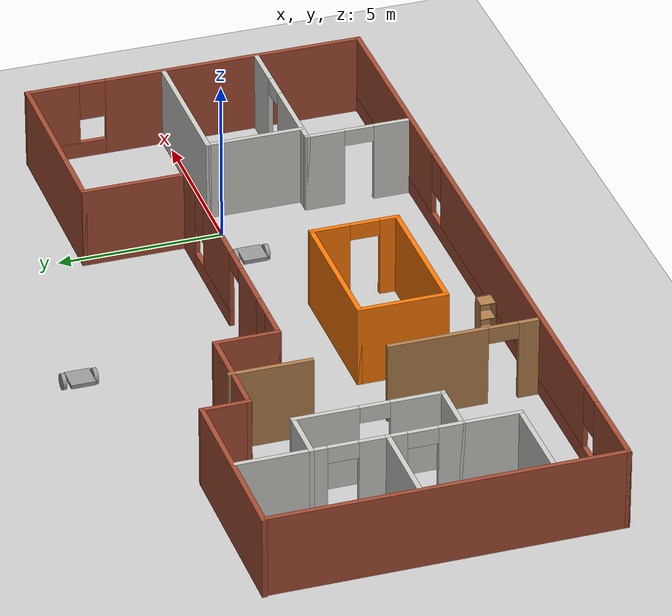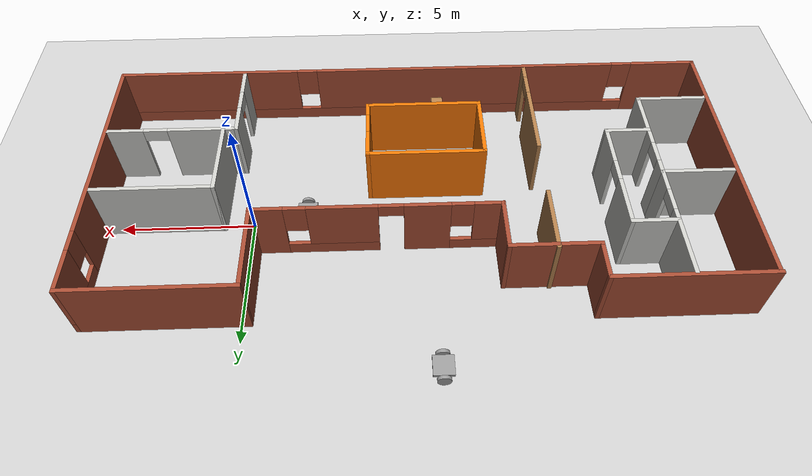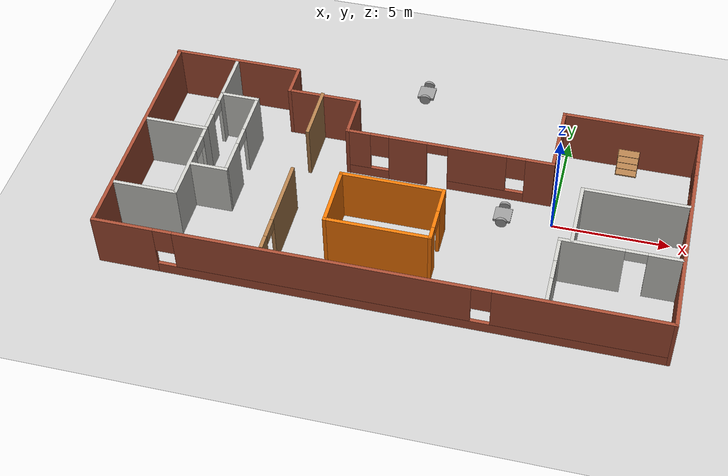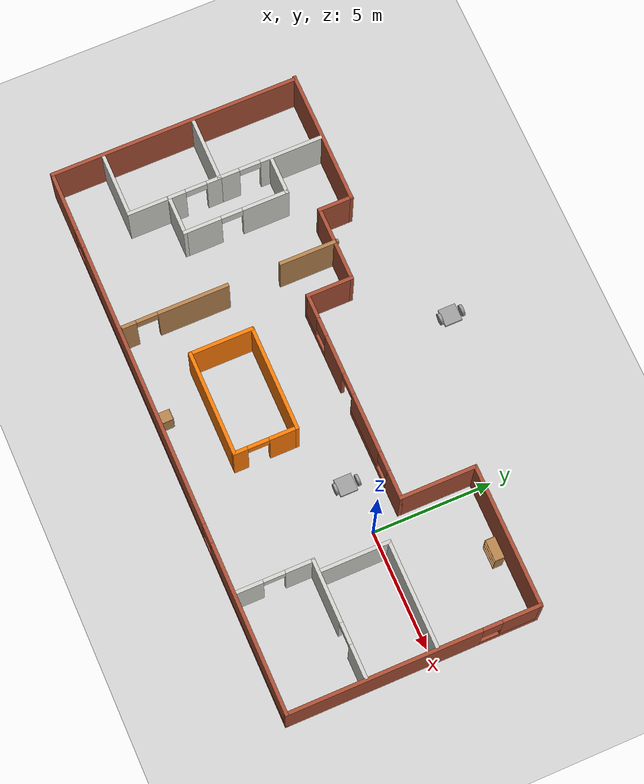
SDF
<sdf version="1.6">
 <world name="default">
  <plugin name="hello" filename="libhello.so"/>
  <light name="sun" type="directional">
   <pose>0 0 10 0 -0 0</pose>
   <diffuse>0.8 0.8 0.8 1</diffuse>
   <specular>0.2 0.2 0.2 1</specular>
   <attenuation>
    <range>1000</range>
    <constant>0.9</constant>
    <linear>0.01</linear>
    <quadratic>0.001</quadratic>
   </attenuation>
   <direction>-0.5 0.1 -0.9</direction>
  </light>
  <model name="ground_plane">
   <static>1</static>
   <link name="link">
    <collision name="collision">
     <geometry><plane><normal>0 0 1</normal><size>100 100</size></plane></geometry>
     <surface>
      <contact><collide_bitmask>65535</collide_bitmask></contact>
      <friction><ode><mu>100</mu><mu2>50</mu2></ode></friction>
     </surface>
    </collision>
    <visual name="visual">
     <cast_shadows>0</cast_shadows>
     <geometry><plane><normal>0 0 1</normal><size>100 100</size></plane></geometry>
     <material>
      <script><uri>file://media/materials/scripts/gazebo.material</uri><name>Gazebo/Grey</name></script>
     </material>
    </visual>
   </link>
  </model>
  <gravity>0 0 -9.8</gravity>
  <magnetic_field>6e-06 2.3e-05 -4.2e-05</magnetic_field>
  <atmosphere type="adiabatic"/>
  <physics name="default_physics" default="0" type="ode">
   <max_step_size>0.001</max_step_size>
   <real_time_factor>1</real_time_factor>
   <real_time_update_rate>1000</real_time_update_rate>
  </physics>
  <scene><ambient>0.4 0.4 0.4 1</ambient><background>0.7 0.7 0.7 1</background><shadows>1</shadows></scene>
  <spherical_coordinates>
   <surface_model>EARTH_WGS84</surface_model>
   <latitude_deg>0</latitude_deg>
   <longitude_deg>0</longitude_deg>
   <elevation>0</elevation>
   <heading_deg>0</heading_deg>
  </spherical_coordinates>
  <model name="Building">
   <pose>-6.15049 -0.832939 0 0 -0 0</pose>
   <link name="Wall_1">
    <collision name="Wall_1_Collision">
     <geometry><box><size>10.5 0.15 2.5</size></box></geometry>
     <pose>0 0 1.25 0 -0 0</pose>
    </collision>
    <visual name="Wall_1_Visual">
     <pose>0 0 1.25 0 -0 0</pose>
     <geometry><box><size>10.5 0.15 2.5</size></box></geometry>
     <material>
      <script><uri>file://media/materials/scripts/gazebo.material</uri><name>Gazebo/Bricks</name></script>
      <ambient>1 1 1 1</ambient>
     </material>
     <meta><layer>0</layer></meta>
    </visual>
    <pose>-11.65 -0.05 0 0 0 -1.5708</pose>
   </link>
   <link name="Wall_10">
    <collision name="Wall_10_Collision">
     <geometry><box><size>3.25 0.15 2.5</size></box></geometry>
     <pose>0 0 1.25 0 -0 0</pose>
    </collision>
    <visual name="Wall_10_Visual">
     <pose>0 0 1.25 0 -0 0</pose>
     <geometry><box><size>3.25 0.15 2.5</size></box></geometry>
     <material>
      <script><uri>file://media/materials/scripts/gazebo.material</uri><name>Gazebo/Bricks</name></script>
      <ambient>1 1 1 1</ambient>
     </material>
     <meta><layer>0</layer></meta>
    </visual>
    <pose>-4.55 3.875 0 0 -0 3.14159</pose>
   </link>
   <link name="Wall_11">
    <collision name="Wall_11_Collision">
     <geometry><box><size>1.5 0.15 2.5</size></box></geometry>
     <pose>0 0 1.25 0 -0 0</pose>
    </collision>
    <visual name="Wall_11_Visual">
     <pose>0 0 1.25 0 -0 0</pose>
     <geometry><box><size>1.5 0.15 2.5</size></box></geometry>
     <material>
      <script><uri>file://media/materials/scripts/gazebo.material</uri><name>Gazebo/Bricks</name></script>
      <ambient>1 1 1 1</ambient>
     </material>
     <meta><layer>0</layer></meta>
    </visual>
    <pose>-6.1 4.55 0 0 -0 1.5708</pose>
   </link>
   <link name="Wall_14">
    <collision name="Wall_14_Collision">
     <geometry><box><size>5.75 0.15 2.5</size></box></geometry>
     <pose>0 0 1.25 0 -0 0</pose>
    </collision>
    <visual name="Wall_14_Visual">
     <pose>0 0 1.25 0 -0 0</pose>
     <geometry><box><size>5.75 0.15 2.5</size></box></geometry>
     <material>
      <script><uri>file://media/materials/scripts/gazebo.material</uri><name>Gazebo/Bricks</name></script>
      <ambient>1 1 1 1</ambient>
     </material>
     <meta><layer>0</layer></meta>
    </visual>
    <pose>-8.9 5.225 0 0 -0 3.14159</pose>
   </link>
   <link name="Wall_16">
    <pose>6.75486 -3.54398 0 0 -0 1.5708</pose>
    <visual name="Wall_16_Visual_0">
     <pose>-1.06347 0 1.25 0 -0 0</pose>
     <geometry><box><size>1.12307 0.15 2.5</size></box></geometry>
     <material>
      <script><uri>file://media/materials/scripts/gazebo.material</uri><name>Gazebo/CeilingTiled</name></script>
      <ambient>1 0.764706 0.305882 1</ambient>
     </material>
     <meta><layer>0</layer></meta>
    </visual>
    <collision name="Wall_16_Collision_0">
     <geometry><box><size>1.12307 0.15 2.5</size></box></geometry>
     <pose>-1.06347 0 1.25 0 -0 0</pose>
    </collision>
    <visual name="Wall_16_Visual_1">
     <pose>1.01154 0 1.25 0 -0 0</pose>
     <geometry><box><size>1.22693 0.15 2.5</size></box></geometry>
     <material>
      <script><uri>file://media/materials/scripts/gazebo.material</uri><name>Gazebo/CeilingTiled</name></script>
      <ambient>1 0.764706 0.305882 1</ambient>
     </material>
     <meta><layer>0</layer></meta>
    </visual>
    <collision name="Wall_16_Collision_1">
     <geometry><box><size>1.22693 0.15 2.5</size></box></geometry>
     <pose>1.01154 0 1.25 0 -0 0</pose>
    </collision>
    <visual name="Wall_16_Visual_2">
     <pose>-0.05193 0 2.25 0 -0 0</pose>
     <geometry><box><size>0.9 0.15 0.5</size></box></geometry>
     <material>
      <script><uri>file://media/materials/scripts/gazebo.material</uri><name>Gazebo/CeilingTiled</name></script>
      <ambient>1 0.764706 0.305882 1</ambient>
     </material>
     <meta><layer>0</layer></meta>
    </visual>
    <collision name="Wall_16_Collision_2">
     <geometry><box><size>0.9 0.15 0.5</size></box></geometry>
     <pose>-0.05193 0 2.25 0 -0 0</pose>
    </collision>
   </link>
   <link name="Wall_17">
    <pose>9.17986 -1.99398 0 0 -0 0</pose>
    <visual name="Wall_17_Visual_0">
     <pose>-1.16268 0 1.25 0 -0 0</pose>
     <geometry><box><size>2.67464 0.15 2.5</size></box></geometry>
     <material>
      <script><uri>file://media/materials/scripts/gazebo.material</uri><name>Gazebo/CeilingTiled</name></script>
      <ambient>1 0.764706 0.305882 1</ambient>
     </material>
     <meta><layer>0</layer></meta>
    </visual>
    <collision name="Wall_17_Collision_0">
     <geometry><box><size>2.67464 0.15 2.5</size></box></geometry>
     <pose>-1.16268 0 1.25 0 -0 0</pose>
    </collision>
    <visual name="Wall_17_Visual_1">
     <pose>1.78732 0 1.25 0 -0 0</pose>
     <geometry><box><size>1.42536 0.15 2.5</size></box></geometry>
     <material>
      <script><uri>file://media/materials/scripts/gazebo.material</uri><name>Gazebo/CeilingTiled</name></script>
      <ambient>1 0.764706 0.305882 1</ambient>
     </material>
     <meta><layer>0</layer></meta>
    </visual>
    <collision name="Wall_17_Collision_1">
     <geometry><box><size>1.42536 0.15 2.5</size></box></geometry>
     <pose>1.78732 0 1.25 0 -0 0</pose>
    </collision>
    <visual name="Wall_17_Visual_2">
     <pose>0.624643 0 2.25 0 -0 0</pose>
     <geometry><box><size>0.9 0.15 0.5</size></box></geometry>
     <material>
      <script><uri>file://media/materials/scripts/gazebo.material</uri><name>Gazebo/CeilingTiled</name></script>
      <ambient>1 0.764706 0.305882 1</ambient>
     </material>
     <meta><layer>0</layer></meta>
    </visual>
    <collision name="Wall_17_Collision_2">
     <geometry><box><size>0.9 0.15 0.5</size></box></geometry>
     <pose>0.624643 0 2.25 0 -0 0</pose>
    </collision>
   </link>
   <link name="Wall_19">
    <collision name="Wall_19_Collision">
     <geometry><box><size>3 0.15 2.5</size></box></geometry>
     <pose>0 0 1.25 0 -0 0</pose>
    </collision>
    <visual name="Wall_19_Visual">
     <pose>0 0 1.25 0 -0 0</pose>
     <geometry><box><size>3 0.15 2.5</size></box></geometry>
     <material>
      <script><uri>file://media/materials/scripts/gazebo.material</uri><name>Gazebo/CeilingTiled</name></script>
      <ambient>1 0.764706 0.305882 1</ambient>
     </material>
     <meta><layer>0</layer></meta>
    </visual>
    <pose>7.23638 -0.51233 0 0 -0 1.5708</pose>
   </link>
   <link name="Wall_2">
    <pose>0.025 -5.225 0 0 -0 0</pose>
    <visual name="Wall_2_Visual_0">
     <pose>-10.4412 0 1.25 0 -0 0</pose>
     <geometry><box><size>2.61764 0.15 2.5</size></box></geometry>
     <material>
      <script><uri>file://media/materials/scripts/gazebo.material</uri><name>Gazebo/Bricks</name></script>
      <ambient>1 1 1 1</ambient>
     </material>
     <meta><layer>0</layer></meta>
    </visual>
    <collision name="Wall_2_Collision_0">
     <geometry><box><size>2.61764 0.15 2.5</size></box></geometry>
     <pose>-10.4412 0 1.25 0 -0 0</pose>
    </collision>
    <visual name="Wall_2_Visual_1">
     <pose>1.30882 0 0.25 0 -0 0</pose>
     <geometry><box><size>20.8824 0.15 0.5</size></box></geometry>
     <material>
      <script><uri>file://media/materials/scripts/gazebo.material</uri><name>Gazebo/Bricks</name></script>
      <ambient>1 1 1 1</ambient>
     </material>
     <meta><layer>0</layer></meta>
    </visual>
    <collision name="Wall_2_Collision_1">
     <geometry><box><size>20.8824 0.15 0.5</size></box></geometry>
     <pose>1.30882 0 0.25 0 -0 0</pose>
    </collision>
    <visual name="Wall_2_Visual_2">
     <pose>-2.25856 0 1.5 0 -0 0</pose>
     <geometry><box><size>12.1476 0.15 2</size></box></geometry>
     <material>
      <script><uri>file://media/materials/scripts/gazebo.material</uri><name>Gazebo/Bricks</name></script>
      <ambient>1 1 1 1</ambient>
     </material>
     <meta><layer>0</layer></meta>
    </visual>
    <collision name="Wall_2_Collision_2">
     <geometry><box><size>12.1476 0.15 2</size></box></geometry>
     <pose>-2.25856 0 1.5 0 -0 0</pose>
    </collision>
    <visual name="Wall_2_Visual_3">
     <pose>8.18262 0 1.5 0 -0 0</pose>
     <geometry><box><size>7.13476 0.15 2</size></box></geometry>
     <material>
      <script><uri>file://media/materials/scripts/gazebo.material</uri><name>Gazebo/Bricks</name></script>
      <ambient>1 1 1 1</ambient>
     </material>
     <meta><layer>0</layer></meta>
    </visual>
    <collision name="Wall_2_Collision_3">
     <geometry><box><size>7.13476 0.15 2</size></box></geometry>
     <pose>8.18262 0 1.5 0 -0 0</pose>
    </collision>
    <visual name="Wall_2_Visual_4">
     <pose>-8.73236 0 1.9 0 -0 0</pose>
     <geometry><box><size>0.8 0.15 1.2</size></box></geometry>
     <material>
      <script><uri>file://media/materials/scripts/gazebo.material</uri><name>Gazebo/Bricks</name></script>
      <ambient>1 1 1 1</ambient>
     </material>
     <meta><layer>0</layer></meta>
    </visual>
    <collision name="Wall_2_Collision_4">
     <geometry><box><size>0.8 0.15 1.2</size></box></geometry>
     <pose>-8.73236 0 1.9 0 -0 0</pose>
    </collision>
    <visual name="Wall_2_Visual_5">
     <pose>4.21524 0 1.9 0 -0 0</pose>
     <geometry><box><size>0.8 0.15 1.2</size></box></geometry>
     <material>
      <script><uri>file://media/materials/scripts/gazebo.material</uri><name>Gazebo/Bricks</name></script>
      <ambient>1 1 1 1</ambient>
     </material>
     <meta><layer>0</layer></meta>
    </visual>
    <collision name="Wall_2_Collision_5">
     <geometry><box><size>0.8 0.15 1.2</size></box></geometry>
     <pose>4.21524 0 1.9 0 -0 0</pose>
    </collision>
   </link>
   <link name="Wall_20">
    <collision name="Wall_20_Collision">
     <geometry><box><size>4.5 0.15 2.5</size></box></geometry>
     <pose>0 0 1.25 0 -0 0</pose>
    </collision>
    <visual name="Wall_20_Visual">
     <pose>0 0 1.25 0 -0 0</pose>
     <geometry><box><size>4.5 0.15 2.5</size></box></geometry>
     <material>
      <script><uri>file://media/materials/scripts/gazebo.material</uri><name>Gazebo/CeilingTiled</name></script>
      <ambient>1 0.764706 0.305882 1</ambient>
     </material>
     <meta><layer>0</layer></meta>
    </visual>
    <pose>9.41138 0.91267 0 0 -0 0</pose>
   </link>
   <link name="Wall_23">
    <pose>-8.92137 2.95 0 0 0 -1.5708</pose>
    <visual name="Wall_23_Visual_0">
     <pose>-0.912679 0 1.25 0 -0 0</pose>
     <geometry><box><size>2.67464 0.15 2.5</size></box></geometry>
     <material>
      <script><uri>file://media/materials/scripts/gazebo.material</uri><name>Gazebo/CeilingTiled</name></script>
      <ambient>0.435294 0.796078 0.67451 1</ambient>
     </material>
     <meta><layer>0</layer></meta>
    </visual>
    <collision name="Wall_23_Collision_0">
     <geometry><box><size>2.67464 0.15 2.5</size></box></geometry>
     <pose>-0.912679 0 1.25 0 -0 0</pose>
    </collision>
    <visual name="Wall_23_Visual_1">
     <pose>1.78732 0 1.25 0 -0 0</pose>
     <geometry><box><size>0.925357 0.15 2.5</size></box></geometry>
     <material>
      <script><uri>file://media/materials/scripts/gazebo.material</uri><name>Gazebo/CeilingTiled</name></script>
      <ambient>0.435294 0.796078 0.67451 1</ambient>
     </material>
     <meta><layer>0</layer></meta>
    </visual>
    <collision name="Wall_23_Collision_1">
     <geometry><box><size>0.925357 0.15 2.5</size></box></geometry>
     <pose>1.78732 0 1.25 0 -0 0</pose>
    </collision>
    <visual name="Wall_23_Visual_2">
     <pose>0.874643 0 2.25 0 -0 0</pose>
     <geometry><box><size>0.9 0.15 0.5</size></box></geometry>
     <material>
      <script><uri>file://media/materials/scripts/gazebo.material</uri><name>Gazebo/CeilingTiled</name></script>
      <ambient>0.435294 0.796078 0.67451 1</ambient>
     </material>
     <meta><layer>0</layer></meta>
    </visual>
    <collision name="Wall_23_Collision_2">
     <geometry><box><size>0.9 0.15 0.5</size></box></geometry>
     <pose>0.874643 0 2.25 0 -0 0</pose>
    </collision>
   </link>
   <link name="Wall_24">
    <collision name="Wall_24_Collision">
     <geometry><box><size>2.75 0.15 2.5</size></box></geometry>
     <pose>0 0 1.25 0 -0 0</pose>
    </collision>
    <visual name="Wall_24_Visual">
     <pose>0 0 1.25 0 -0 0</pose>
     <geometry><box><size>2.75 0.15 2.5</size></box></geometry>
     <material>
      <script><uri>file://media/materials/scripts/gazebo.material</uri><name>Gazebo/CeilingTiled</name></script>
      <ambient>0.435294 0.796078 0.67451 1</ambient>
     </material>
     <meta><layer>0</layer></meta>
    </visual>
    <pose>-10.2214 0.775 0 0 -0 3.14159</pose>
   </link>
   <link name="Wall_26">
    <pose>-8.92137 -1.15 0 0 0 -1.5708</pose>
    <visual name="Wall_26_Visual_0">
     <pose>-1.68738 0 1.25 0 -0 0</pose>
     <geometry><box><size>0.62525 0.15 2.5</size></box></geometry>
     <material>
      <script><uri>file://media/materials/scripts/gazebo.material</uri><name>Gazebo/CeilingTiled</name></script>
      <ambient>0.435294 0.796078 0.67451 1</ambient>
     </material>
     <meta><layer>0</layer></meta>
    </visual>
    <collision name="Wall_26_Collision_0">
     <geometry><box><size>0.62525 0.15 2.5</size></box></geometry>
     <pose>-1.68738 0 1.25 0 -0 0</pose>
    </collision>
    <visual name="Wall_26_Visual_1">
     <pose>0.762625 0 1.25 0 -0 0</pose>
     <geometry><box><size>2.47475 0.15 2.5</size></box></geometry>
     <material>
      <script><uri>file://media/materials/scripts/gazebo.material</uri><name>Gazebo/CeilingTiled</name></script>
      <ambient>0.435294 0.796078 0.67451 1</ambient>
     </material>
     <meta><layer>0</layer></meta>
    </visual>
    <collision name="Wall_26_Collision_1">
     <geometry><box><size>2.47475 0.15 2.5</size></box></geometry>
     <pose>0.762625 0 1.25 0 -0 0</pose>
    </collision>
    <visual name="Wall_26_Visual_2">
     <pose>-0.92475 0 2.25 0 -0 0</pose>
     <geometry><box><size>0.9 0.15 0.5</size></box></geometry>
     <material>
      <script><uri>file://media/materials/scripts/gazebo.material</uri><name>Gazebo/CeilingTiled</name></script>
      <ambient>0.435294 0.796078 0.67451 1</ambient>
     </material>
     <meta><layer>0</layer></meta>
    </visual>
    <collision name="Wall_26_Collision_2">
     <geometry><box><size>0.9 0.15 0.5</size></box></geometry>
     <pose>-0.92475 0 2.25 0 -0 0</pose>
    </collision>
   </link>
   <link name="Wall_27">
    <collision name="Wall_27_Collision">
     <geometry><box><size>2.75 0.15 2.5</size></box></geometry>
     <pose>0 0 1.25 0 -0 0</pose>
    </collision>
    <visual name="Wall_27_Visual">
     <pose>0 0 1.25 0 -0 0</pose>
     <geometry><box><size>2.75 0.15 2.5</size></box></geometry>
     <material>
      <script><uri>file://media/materials/scripts/gazebo.material</uri><name>Gazebo/CeilingTiled</name></script>
      <ambient>0.435294 0.796078 0.67451 1</ambient>
     </material>
     <meta><layer>0</layer></meta>
    </visual>
    <pose>-10.2214 -3.075 0 0 -0 3.14159</pose>
   </link>
   <link name="Wall_29">
    <collision name="Wall_29_Collision">
     <geometry><box><size>1.75 0.15 2.5</size></box></geometry>
     <pose>0 0 1.25 0 -0 0</pose>
    </collision>
    <visual name="Wall_29_Visual">
     <pose>0 0 1.25 0 -0 0</pose>
     <geometry><box><size>1.75 0.15 2.5</size></box></geometry>
     <material>
      <script><uri>file://media/materials/scripts/gazebo.material</uri><name>Gazebo/CeilingTiled</name></script>
      <ambient>0.435294 0.796078 0.67451 1</ambient>
     </material>
     <meta><layer>0</layer></meta>
    </visual>
    <pose>-8.12137 2.9849 0 0 -0 0</pose>
   </link>
   <link name="Wall_3">
    <pose>11.7 -0.05 0 0 -0 1.5708</pose>
    <visual name="Wall_3_Visual_0">
     <pose>-1.2273 0 1.25 0 -0 0</pose>
     <geometry><box><size>8.04541 0.15 2.5</size></box></geometry>
     <material>
      <script><uri>file://media/materials/scripts/gazebo.material</uri><name>Gazebo/Bricks</name></script>
      <ambient>1 1 1 1</ambient>
     </material>
     <meta><layer>0</layer></meta>
    </visual>
    <collision name="Wall_3_Collision_0">
     <geometry><box><size>8.04541 0.15 2.5</size></box></geometry>
     <pose>-1.2273 0 1.25 0 -0 0</pose>
    </collision>
    <visual name="Wall_3_Visual_1">
     <pose>4.0227 0 0.25 0 -0 0</pose>
     <geometry><box><size>2.45459 0.15 0.5</size></box></geometry>
     <material>
      <script><uri>file://media/materials/scripts/gazebo.material</uri><name>Gazebo/Bricks</name></script>
      <ambient>1 1 1 1</ambient>
     </material>
     <meta><layer>0</layer></meta>
    </visual>
    <collision name="Wall_3_Collision_1">
     <geometry><box><size>2.45459 0.15 0.5</size></box></geometry>
     <pose>4.0227 0 0.25 0 -0 0</pose>
    </collision>
    <visual name="Wall_3_Visual_2">
     <pose>4.4227 0 1.5 0 -0 0</pose>
     <geometry><box><size>1.65459 0.15 2</size></box></geometry>
     <material>
      <script><uri>file://media/materials/scripts/gazebo.material</uri><name>Gazebo/Bricks</name></script>
      <ambient>1 1 1 1</ambient>
     </material>
     <meta><layer>0</layer></meta>
    </visual>
    <collision name="Wall_3_Collision_2">
     <geometry><box><size>1.65459 0.15 2</size></box></geometry>
     <pose>4.4227 0 1.5 0 -0 0</pose>
    </collision>
    <visual name="Wall_3_Visual_3">
     <pose>3.19541 0 1.9 0 -0 0</pose>
     <geometry><box><size>0.8 0.15 1.2</size></box></geometry>
     <material>
      <script><uri>file://media/materials/scripts/gazebo.material</uri><name>Gazebo/Bricks</name></script>
      <ambient>1 1 1 1</ambient>
     </material>
     <meta><layer>0</layer></meta>
    </visual>
    <collision name="Wall_3_Collision_3">
     <geometry><box><size>0.8 0.15 1.2</size></box></geometry>
     <pose>3.19541 0 1.9 0 -0 0</pose>
    </collision>
   </link>
   <link name="Wall_30">
    <pose>-7.32137 0.8099 0 0 0 -1.5708</pose>
    <visual name="Wall_30_Visual_0">
     <pose>-1.26045 0 1.25 0 -0 0</pose>
     <geometry><box><size>1.97911 0.15 2.5</size></box></geometry>
     <material>
      <script><uri>file://media/materials/scripts/gazebo.material</uri><name>Gazebo/CeilingTiled</name></script>
      <ambient>0.435294 0.796078 0.67451 1</ambient>
     </material>
     <meta><layer>0</layer></meta>
    </visual>
    <collision name="Wall_30_Collision_0">
     <geometry><box><size>1.97911 0.15 2.5</size></box></geometry>
     <pose>-1.26045 0 1.25 0 -0 0</pose>
    </collision>
    <visual name="Wall_30_Visual_1">
     <pose>1.43955 0 1.25 0 -0 0</pose>
     <geometry><box><size>1.62089 0.15 2.5</size></box></geometry>
     <material>
      <script><uri>file://media/materials/scripts/gazebo.material</uri><name>Gazebo/CeilingTiled</name></script>
      <ambient>0.435294 0.796078 0.67451 1</ambient>
     </material>
     <meta><layer>0</layer></meta>
    </visual>
    <collision name="Wall_30_Collision_1">
     <geometry><box><size>1.62089 0.15 2.5</size></box></geometry>
     <pose>1.43955 0 1.25 0 -0 0</pose>
    </collision>
    <visual name="Wall_30_Visual_2">
     <pose>0.17911 0 2.25 0 -0 0</pose>
     <geometry><box><size>0.9 0.15 0.5</size></box></geometry>
     <material>
      <script><uri>file://media/materials/scripts/gazebo.material</uri><name>Gazebo/CeilingTiled</name></script>
      <ambient>0.435294 0.796078 0.67451 1</ambient>
     </material>
     <meta><layer>0</layer></meta>
    </visual>
    <collision name="Wall_30_Collision_2">
     <geometry><box><size>0.9 0.15 0.5</size></box></geometry>
     <pose>0.17911 0 2.25 0 -0 0</pose>
    </collision>
   </link>
   <link name="Wall_35">
    <collision name="Wall_35_Collision">
     <geometry><box><size>1.75 0.15 2.5</size></box></geometry>
     <pose>0 0 1.25 0 -0 0</pose>
    </collision>
    <visual name="Wall_35_Visual">
     <pose>0 0 1.25 0 -0 0</pose>
     <geometry><box><size>1.75 0.15 2.5</size></box></geometry>
     <material>
      <script><uri>file://media/materials/scripts/gazebo.material</uri><name>Gazebo/CeilingTiled</name></script>
      <ambient>0.435294 0.796078 0.67451 1</ambient>
     </material>
     <meta><layer>0</layer></meta>
    </visual>
    <pose>-8.12137 -1.3651 0 0 -0 3.14159</pose>
   </link>
   <link name="Wall_38">
    <collision name="Wall_38_Collision">
     <geometry><box><size>2.75 0.15 2.5</size></box></geometry>
     <pose>0 0 1.25 0 -0 0</pose>
    </collision>
    <visual name="Wall_38_Visual">
     <pose>0 0 1.25 0 -0 0</pose>
     <geometry><box><size>2.75 0.15 2.5</size></box></geometry>
     <material>
      <script><uri>file://media/materials/scripts/gazebo.material</uri><name>Gazebo/Grey</name></script>
      <ambient>0.996078 0.47451 0.0196078 1</ambient>
     </material>
     <meta><layer>0</layer></meta>
    </visual>
    <pose>-2.60851 -1.79306 0 0 0 -1.5708</pose>
   </link>
   <link name="Wall_39">
    <collision name="Wall_39_Collision">
     <geometry><box><size>4.5 0.15 2.5</size></box></geometry>
     <pose>0 0 1.25 0 -0 0</pose>
    </collision>
    <visual name="Wall_39_Visual">
     <pose>0 0 1.25 0 -0 0</pose>
     <geometry><box><size>4.5 0.15 2.5</size></box></geometry>
     <material>
      <script><uri>file://media/materials/scripts/gazebo.material</uri><name>Gazebo/Grey</name></script>
      <ambient>0.996078 0.47451 0.0196078 1</ambient>
     </material>
     <meta><layer>0</layer></meta>
    </visual>
    <pose>-0.433507 -3.09306 0 0 -0 0</pose>
   </link>
   <link name="Wall_40">
    <pose>1.74149 -1.79306 0 0 -0 1.5708</pose>
    <visual name="Wall_40_Visual_0">
     <pose>-1.06504 0 1.25 0 -0 0</pose>
     <geometry><box><size>0.619925 0.15 2.5</size></box></geometry>
     <material>
      <script><uri>file://media/materials/scripts/gazebo.material</uri><name>Gazebo/Grey</name></script>
      <ambient>0.996078 0.47451 0.0196078 1</ambient>
     </material>
     <meta><layer>0</layer></meta>
    </visual>
    <collision name="Wall_40_Collision_0">
     <geometry><box><size>0.619925 0.15 2.5</size></box></geometry>
     <pose>-1.06504 0 1.25 0 -0 0</pose>
    </collision>
    <visual name="Wall_40_Visual_1">
     <pose>0.759962 0 1.25 0 -0 0</pose>
     <geometry><box><size>1.23008 0.15 2.5</size></box></geometry>
     <material>
      <script><uri>file://media/materials/scripts/gazebo.material</uri><name>Gazebo/Grey</name></script>
      <ambient>0.996078 0.47451 0.0196078 1</ambient>
     </material>
     <meta><layer>0</layer></meta>
    </visual>
    <collision name="Wall_40_Collision_1">
     <geometry><box><size>1.23008 0.15 2.5</size></box></geometry>
     <pose>0.759962 0 1.25 0 -0 0</pose>
    </collision>
    <visual name="Wall_40_Visual_2">
     <pose>-0.305075 0 2.25 0 -0 0</pose>
     <geometry><box><size>0.9 0.15 0.5</size></box></geometry>
     <material>
      <script><uri>file://media/materials/scripts/gazebo.material</uri><name>Gazebo/Grey</name></script>
      <ambient>0.996078 0.47451 0.0196078 1</ambient>
     </material>
     <meta><layer>0</layer></meta>
    </visual>
    <collision name="Wall_40_Collision_2">
     <geometry><box><size>0.9 0.15 0.5</size></box></geometry>
     <pose>-0.305075 0 2.25 0 -0 0</pose>
    </collision>
   </link>
   <link name="Wall_41">
    <collision name="Wall_41_Collision">
     <geometry><box><size>4.5 0.15 2.5</size></box></geometry>
     <pose>0 0 1.25 0 -0 0</pose>
    </collision>
    <visual name="Wall_41_Visual">
     <pose>0 0 1.25 0 -0 0</pose>
     <geometry><box><size>4.5 0.15 2.5</size></box></geometry>
     <material>
      <script><uri>file://media/materials/scripts/gazebo.material</uri><name>Gazebo/Grey</name></script>
      <ambient>0.996078 0.47451 0.0196078 1</ambient>
     </material>
     <meta><layer>0</layer></meta>
    </visual>
    <pose>-0.433507 -0.493061 0 0 -0 3.14159</pose>
   </link>
   <link name="Wall_43">
    <collision name="Wall_43_Collision">
     <geometry><box><size>2.5 0.15 2.5</size></box></geometry>
     <pose>0 0 1.25 0 -0 0</pose>
    </collision>
    <visual name="Wall_43_Visual">
     <pose>0 0 1.25 0 -0 0</pose>
     <geometry><box><size>2.5 0.15 2.5</size></box></geometry>
     <material>
      <script><uri>file://media/materials/scripts/gazebo.material</uri><name>Gazebo/Wood</name></script>
      <ambient>1 1 1 1</ambient>
     </material>
     <meta><layer>0</layer></meta>
    </visual>
    <pose>-4.64117 2.77294 0 0 0 -1.5708</pose>
   </link>
   <link name="Wall_45">
    <pose>-4.64117 -2.88177 0 0 0 -1.5708</pose>
    <visual name="Wall_45_Visual_0">
     <pose>-0.752171 0 1.25 0 -0 0</pose>
     <geometry><box><size>2.99566 0.15 2.5</size></box></geometry>
     <material>
      <script><uri>file://media/materials/scripts/gazebo.material</uri><name>Gazebo/Wood</name></script>
      <ambient>1 1 1 1</ambient>
     </material>
     <meta><layer>0</layer></meta>
    </visual>
    <collision name="Wall_45_Collision_0">
     <geometry><box><size>2.99566 0.15 2.5</size></box></geometry>
     <pose>-0.752171 0 1.25 0 -0 0</pose>
    </collision>
    <visual name="Wall_45_Visual_1">
     <pose>1.94783 0 1.25 0 -0 0</pose>
     <geometry><box><size>0.604343 0.15 2.5</size></box></geometry>
     <material>
      <script><uri>file://media/materials/scripts/gazebo.material</uri><name>Gazebo/Wood</name></script>
      <ambient>1 1 1 1</ambient>
     </material>
     <meta><layer>0</layer></meta>
    </visual>
    <collision name="Wall_45_Collision_1">
     <geometry><box><size>0.604343 0.15 2.5</size></box></geometry>
     <pose>1.94783 0 1.25 0 -0 0</pose>
    </collision>
    <visual name="Wall_45_Visual_2">
     <pose>1.19566 0 2.25 0 -0 0</pose>
     <geometry><box><size>0.9 0.15 0.5</size></box></geometry>
     <material>
      <script><uri>file://media/materials/scripts/gazebo.material</uri><name>Gazebo/Wood</name></script>
      <ambient>1 1 1 1</ambient>
     </material>
     <meta><layer>0</layer></meta>
    </visual>
    <collision name="Wall_45_Collision_2">
     <geometry><box><size>0.9 0.15 0.5</size></box></geometry>
     <pose>1.19566 0 2.25 0 -0 0</pose>
    </collision>
   </link>
   <link name="Wall_6">
    <collision name="Wall_6_Collision">
     <geometry><box><size>6 0.15 2.5</size></box></geometry>
     <pose>0 0 1.25 0 -0 0</pose>
    </collision>
    <visual name="Wall_6_Visual">
     <pose>0 0 1.25 0 -0 0</pose>
     <geometry><box><size>6 0.15 2.5</size></box></geometry>
     <material>
      <script><uri>file://media/materials/scripts/gazebo.material</uri><name>Gazebo/Bricks</name></script>
      <ambient>1 1 1 1</ambient>
     </material>
     <meta><layer>0</layer></meta>
    </visual>
    <pose>8.775 5.125 0 0 -0 3.14159</pose>
   </link>
   <link name="Wall_7">
    <collision name="Wall_7_Collision">
     <geometry><box><size>3.25 0.15 2.5</size></box></geometry>
     <pose>0 0 1.25 0 -0 0</pose>
    </collision>
    <visual name="Wall_7_Visual">
     <pose>0 0 1.25 0 -0 0</pose>
     <geometry><box><size>3.25 0.15 2.5</size></box></geometry>
     <material>
      <script><uri>file://media/materials/scripts/gazebo.material</uri><name>Gazebo/Bricks</name></script>
      <ambient>1 1 1 1</ambient>
     </material>
     <meta><layer>0</layer></meta>
    </visual>
    <pose>5.85 3.575 0 0 0 -1.5708</pose>
   </link>
   <link name="Wall_8">
    <pose>1.425 2.025 0 0 -0 3.14159</pose>
    <visual name="Wall_8_Visual_0">
     <pose>-3.88437 0 1.25 0 -0 0</pose>
     <geometry><box><size>1.23125 0.15 2.5</size></box></geometry>
     <material>
      <script><uri>file://media/materials/scripts/gazebo.material</uri><name>Gazebo/Bricks</name></script>
      <ambient>1 1 1 1</ambient>
     </material>
     <meta><layer>0</layer></meta>
    </visual>
    <collision name="Wall_8_Collision_0">
     <geometry><box><size>1.23125 0.15 2.5</size></box></geometry>
     <pose>-3.88437 0 1.25 0 -0 0</pose>
    </collision>
    <visual name="Wall_8_Visual_1">
     <pose>1.78422 0 1.25 0 -0 0</pose>
     <geometry><box><size>1.66462 0.15 2.5</size></box></geometry>
     <material>
      <script><uri>file://media/materials/scripts/gazebo.material</uri><name>Gazebo/Bricks</name></script>
      <ambient>1 1 1 1</ambient>
     </material>
     <meta><layer>0</layer></meta>
    </visual>
    <collision name="Wall_8_Collision_1">
     <geometry><box><size>1.66462 0.15 2.5</size></box></geometry>
     <pose>1.78422 0 1.25 0 -0 0</pose>
    </collision>
    <visual name="Wall_8_Visual_2">
     <pose>-1.60842 0 0.25 0 -0 0</pose>
     <geometry><box><size>3.32066 0.15 0.5</size></box></geometry>
     <material>
      <script><uri>file://media/materials/scripts/gazebo.material</uri><name>Gazebo/Bricks</name></script>
      <ambient>1 1 1 1</ambient>
     </material>
     <meta><layer>0</layer></meta>
    </visual>
    <collision name="Wall_8_Collision_2">
     <geometry><box><size>3.32066 0.15 0.5</size></box></geometry>
     <pose>-1.60842 0 0.25 0 -0 0</pose>
    </collision>
    <visual name="Wall_8_Visual_3">
     <pose>3.55827 0 0.25 0 -0 0</pose>
     <geometry><box><size>1.88347 0.15 0.5</size></box></geometry>
     <material>
      <script><uri>file://media/materials/scripts/gazebo.material</uri><name>Gazebo/Bricks</name></script>
      <ambient>1 1 1 1</ambient>
     </material>
     <meta><layer>0</layer></meta>
    </visual>
    <collision name="Wall_8_Collision_3">
     <geometry><box><size>1.88347 0.15 0.5</size></box></geometry>
     <pose>3.55827 0 0.25 0 -0 0</pose>
    </collision>
    <visual name="Wall_8_Visual_4">
     <pose>-1.20842 0 1.5 0 -0 0</pose>
     <geometry><box><size>2.52066 0.15 2</size></box></geometry>
     <material>
      <script><uri>file://media/materials/scripts/gazebo.material</uri><name>Gazebo/Bricks</name></script>
      <ambient>1 1 1 1</ambient>
     </material>
     <meta><layer>0</layer></meta>
    </visual>
    <collision name="Wall_8_Collision_4">
     <geometry><box><size>2.52066 0.15 2</size></box></geometry>
     <pose>-1.20842 0 1.5 0 -0 0</pose>
    </collision>
    <visual name="Wall_8_Visual_5">
     <pose>-1.20842 0 1.5 0 -0 0</pose>
     <geometry><box><size>2.52066 0.15 2</size></box></geometry>
     <material>
      <script><uri>file://media/materials/scripts/gazebo.material</uri><name>Gazebo/Bricks</name></script>
      <ambient>1 1 1 1</ambient>
     </material>
     <meta><layer>0</layer></meta>
    </visual>
    <collision name="Wall_8_Collision_5">
     <geometry><box><size>2.52066 0.15 2</size></box></geometry>
     <pose>-1.20842 0 1.5 0 -0 0</pose>
    </collision>
    <visual name="Wall_8_Visual_6">
     <pose>3.95826 0 1.5 0 -0 0</pose>
     <geometry><box><size>1.08347 0.15 2</size></box></geometry>
     <material>
      <script><uri>file://media/materials/scripts/gazebo.material</uri><name>Gazebo/Bricks</name></script>
      <ambient>1 1 1 1</ambient>
     </material>
     <meta><layer>0</layer></meta>
    </visual>
    <collision name="Wall_8_Collision_6">
     <geometry><box><size>1.08347 0.15 2</size></box></geometry>
     <pose>3.95826 0 1.5 0 -0 0</pose>
    </collision>
    <visual name="Wall_8_Visual_7">
     <pose>-2.86875 0 1.9 0 -0 0</pose>
     <geometry><box><size>0.8 0.15 1.2</size></box></geometry>
     <material>
      <script><uri>file://media/materials/scripts/gazebo.material</uri><name>Gazebo/Bricks</name></script>
      <ambient>1 1 1 1</ambient>
     </material>
     <meta><layer>0</layer></meta>
    </visual>
    <collision name="Wall_8_Collision_7">
     <geometry><box><size>0.8 0.15 1.2</size></box></geometry>
     <pose>-2.86875 0 1.9 0 -0 0</pose>
    </collision>
    <visual name="Wall_8_Visual_8">
     <pose>3.01653 0 1.9 0 -0 0</pose>
     <geometry><box><size>0.8 0.15 1.2</size></box></geometry>
     <material>
      <script><uri>file://media/materials/scripts/gazebo.material</uri><name>Gazebo/Bricks</name></script>
      <ambient>1 1 1 1</ambient>
     </material>
     <meta><layer>0</layer></meta>
    </visual>
    <collision name="Wall_8_Collision_8">
     <geometry><box><size>0.8 0.15 1.2</size></box></geometry>
     <pose>3.01653 0 1.9 0 -0 0</pose>
    </collision>
    <visual name="Wall_8_Visual_9">
     <pose>0.501912 0 2.25 0 -0 0</pose>
     <geometry><box><size>0.9 0.15 0.5</size></box></geometry>
     <material>
      <script><uri>file://media/materials/scripts/gazebo.material</uri><name>Gazebo/Bricks</name></script>
      <ambient>1 1 1 1</ambient>
     </material>
     <meta><layer>0</layer></meta>
    </visual>
    <collision name="Wall_8_Collision_9">
     <geometry><box><size>0.9 0.15 0.5</size></box></geometry>
     <pose>0.501912 0 2.25 0 -0 0</pose>
    </collision>
    <visual name="Wall_8_Visual_10">
     <pose>0.501912 0 2.25 0 -0 0</pose>
     <geometry><box><size>0.9 0.15 0.5</size></box></geometry>
     <material>
      <script><uri>file://media/materials/scripts/gazebo.material</uri><name>Gazebo/Bricks</name></script>
      <ambient>1 1 1 1</ambient>
     </material>
     <meta><layer>0</layer></meta>
    </visual>
    <collision name="Wall_8_Collision_10">
     <geometry><box><size>0.9 0.15 0.5</size></box></geometry>
     <pose>0.501912 0 2.25 0 -0 0</pose>
    </collision>
   </link>
   <link name="Wall_9">
    <collision name="Wall_9_Collision">
     <geometry><box><size>2 0.15 2.5</size></box></geometry>
     <pose>0 0 1.25 0 -0 0</pose>
    </collision>
    <visual name="Wall_9_Visual">
     <pose>0 0 1.25 0 -0 0</pose>
     <geometry><box><size>2 0.15 2.5</size></box></geometry>
     <material>
      <script><uri>file://media/materials/scripts/gazebo.material</uri><name>Gazebo/Bricks</name></script>
      <ambient>1 1 1 1</ambient>
     </material>
     <meta><layer>0</layer></meta>
    </visual>
    <pose>-3 2.95 0 0 -0 1.5708</pose>
   </link>
   <static>1</static>
  </model>
  <model name="HumanoidRobot">
   <link name="link_0">
    <pose>-0 -0.026667 0 0 -0 0</pose>
    <inertial>
     <mass>1</mass>
     <inertia>
      <ixx>0.166667</ixx>
      <ixy>0</ixy>
      <ixz>0</ixz>
      <iyy>0.166667</iyy>
      <iyz>0</iyz>
      <izz>0.166667</izz>
     </inertia>
    </inertial>
    <visual name="visual">
     <geometry><box><size>0.73 0.73 0.12</size></box></geometry>
     <material>
      <lighting>1</lighting>
      <script><uri>file://media/materials/scripts/gazebo.material</uri><name>Gazebo/Grey</name></script>
      <shader type="pixel"><normal_map>__default__</normal_map></shader>
      <ambient>0.3 0.3 0.3 1</ambient>
      <diffuse>0.7 0.7 0.7 1</diffuse>
      <specular>0.01 0.01 0.01 1</specular>
      <emissive>0 0 0 1</emissive>
     </material>
    </visual>
    <collision name="collision">
     <geometry><box><size>0.73 0.73 0.12</size></box></geometry>
     <surface>
      <friction>
       <ode><mu>1</mu><mu2>1</mu2><fdir1>0 0 0</fdir1><slip1>0</slip1><slip2>0</slip2></ode>
       <torsional>
        <coefficient>1</coefficient>
        <patch_radius>0</patch_radius>
        <surface_radius>0</surface_radius>
        <use_patch_radius>1</use_patch_radius>
        <ode><slip>0</slip></ode>
       </torsional>
      </friction>
      <bounce><restitution_coefficient>0</restitution_coefficient><threshold>1e+06</threshold></bounce>
      <contact>
       <collide_without_contact>0</collide_without_contact>
       <collide_without_contact_bitmask>1</collide_without_contact_bitmask>
       <collide_bitmask>1</collide_bitmask>
       <ode>
        <soft_cfm>0</soft_cfm>
        <soft_erp>0.2</soft_erp>
        <kp>1e+13</kp>
        <kd>1</kd>
        <max_vel>0.01</max_vel>
        <min_depth>0</min_depth>
       </ode>
       <bullet>
        <split_impulse>1</split_impulse>
        <split_impulse_penetration_threshold>-0.01</split_impulse_penetration_threshold>
        <soft_cfm>0</soft_cfm>
        <soft_erp>0.2</soft_erp>
        <kp>1e+13</kp>
        <kd>1</kd>
       </bullet>
      </contact>
     </surface>
    </collision>
   </link>
   <link name="link_1">
    <pose>-0 0.478525 0 1.57 -0 0</pose>
    <inertial>
     <mass>1</mass>
     <inertia><ixx>0.145833</ixx><ixy>0</ixy><ixz>0</ixz><iyy>0.145833</iyy><iyz>0</iyz><izz>0.125</izz></inertia>
    </inertial>
    <visual name="visual">
     <geometry><cylinder><radius>0.24</radius><length>0.12</length></cylinder></geometry>
     <material>
      <lighting>1</lighting>
      <script><uri>file://media/materials/scripts/gazebo.material</uri><name>Gazebo/Grey</name></script>
      <shader type="pixel"><normal_map>__default__</normal_map></shader>
      <ambient>0.3 0.3 0.3 1</ambient>
      <diffuse>0.7 0.7 0.7 1</diffuse>
      <specular>0.01 0.01 0.01 1</specular>
      <emissive>0 0 0 1</emissive>
     </material>
    </visual>
    <collision name="collision">
     <geometry><cylinder><radius>0.24</radius><length>0.12</length></cylinder></geometry>
     <surface>
      <friction>
       <ode><mu>1</mu><mu2>1</mu2><fdir1>0 0 0</fdir1><slip1>0</slip1><slip2>0</slip2></ode>
       <torsional>
        <coefficient>1</coefficient>
        <patch_radius>0</patch_radius>
        <surface_radius>0</surface_radius>
        <use_patch_radius>1</use_patch_radius>
        <ode><slip>0</slip></ode>
       </torsional>
      </friction>
      <bounce><restitution_coefficient>0</restitution_coefficient><threshold>1e+06</threshold></bounce>
      <contact>
       <collide_without_contact>0</collide_without_contact>
       <collide_without_contact_bitmask>1</collide_without_contact_bitmask>
       <collide_bitmask>1</collide_bitmask>
       <ode>
        <soft_cfm>0</soft_cfm>
        <soft_erp>0.2</soft_erp>
        <kp>1e+13</kp>
        <kd>1</kd>
        <max_vel>0.01</max_vel>
        <min_depth>0</min_depth>
       </ode>
       <bullet>
        <split_impulse>1</split_impulse>
        <split_impulse_penetration_threshold>-0.01</split_impulse_penetration_threshold>
        <soft_cfm>0</soft_cfm>
        <soft_erp>0.2</soft_erp>
        <kp>1e+13</kp>
        <kd>1</kd>
       </bullet>
      </contact>
     </surface>
    </collision>
   </link>
   <link name="link_1_clone">
    <pose>-0 -0.451858 0 1.57 -0 0</pose>
    <inertial>
     <mass>1</mass>
     <inertia><ixx>0.145833</ixx><ixy>0</ixy><ixz>0</ixz><iyy>0.145833</iyy><iyz>0</iyz><izz>0.125</izz></inertia>
    </inertial>
    <visual name="visual">
     <geometry><cylinder><radius>0.24</radius><length>0.12</length></cylinder></geometry>
     <material>
      <lighting>1</lighting>
      <script><uri>file://media/materials/scripts/gazebo.material</uri><name>Gazebo/Grey</name></script>
      <shader type="pixel"><normal_map>__default__</normal_map></shader>
      <ambient>0.3 0.3 0.3 1</ambient>
      <diffuse>0.7 0.7 0.7 1</diffuse>
      <specular>0.01 0.01 0.01 1</specular>
      <emissive>0 0 0 1</emissive>
     </material>
    </visual>
    <collision name="collision">
     <geometry><cylinder><radius>0.24</radius><length>0.12</length></cylinder></geometry>
     <surface>
      <friction>
       <ode><mu>1</mu><mu2>1</mu2><fdir1>0 0 0</fdir1><slip1>0</slip1><slip2>0</slip2></ode>
       <torsional>
        <coefficient>1</coefficient>
        <patch_radius>0</patch_radius>
        <surface_radius>0</surface_radius>
        <use_patch_radius>1</use_patch_radius>
        <ode><slip>0</slip></ode>
       </torsional>
      </friction>
      <bounce><restitution_coefficient>0</restitution_coefficient><threshold>1e+06</threshold></bounce>
      <contact>
       <collide_without_contact>0</collide_without_contact>
       <collide_without_contact_bitmask>1</collide_without_contact_bitmask>
       <collide_bitmask>1</collide_bitmask>
       <ode>
        <soft_cfm>0</soft_cfm>
        <soft_erp>0.2</soft_erp>
        <kp>1e+13</kp>
        <kd>1</kd>
        <max_vel>0.01</max_vel>
        <min_depth>0</min_depth>
       </ode>
       <bullet>
        <split_impulse>1</split_impulse>
        <split_impulse_penetration_threshold>-0.01</split_impulse_penetration_threshold>
        <soft_cfm>0</soft_cfm>
        <soft_erp>0.2</soft_erp>
        <kp>1e+13</kp>
        <kd>1</kd>
       </bullet>
      </contact>
     </surface>
    </collision>
   </link>
   <joint name="link_0_JOINT_0" type="revolute">
    <parent>link_0</parent>
    <child>link_1</child>
    <axis>
     <xyz>0 0 1</xyz>
     <use_parent_model_frame>0</use_parent_model_frame>
     <limit>
      <lower>-1.79769e+308</lower>
      <upper>1.79769e+308</upper>
      <effort>-1</effort>
      <velocity>-1</velocity>
     </limit>
     <dynamics>
      <spring_reference>0</spring_reference>
      <spring_stiffness>0</spring_stiffness>
      <damping>0</damping>
      <friction>0</friction>
     </dynamics>
    </axis>
    <physics>
     <ode><limit><cfm>0</cfm><erp>0.2</erp></limit><suspension><cfm>0</cfm><erp>0.2</erp></suspension></ode>
    </physics>
   </joint>
   <joint name="link_0_JOINT_1" type="revolute">
    <parent>link_0</parent>
    <child>link_1_clone</child>
    <axis>
     <xyz>0 0 1</xyz>
     <use_parent_model_frame>0</use_parent_model_frame>
     <limit>
      <lower>-1.79769e+308</lower>
      <upper>1.79769e+308</upper>
      <effort>-1</effort>
      <velocity>-1</velocity>
     </limit>
     <dynamics>
      <spring_reference>0</spring_reference>
      <spring_stiffness>0</spring_stiffness>
      <damping>0</damping>
     </dynamics>
    </axis>
    <physics>
     <ode><limit><cfm>0</cfm><erp>0.2</erp></limit><suspension><cfm>0</cfm><erp>0.2</erp></suspension></ode>
    </physics>
   </joint>
   <static>0</static>
   <pose>-6.80557 6.35117 0.5 0 -0 0</pose>
  </model>
  <model name="HumanoidRobot_clone">
   <link name="link_0">
    <pose>-0 -0.026667 0 0 -0 0</pose>
    <inertial>
     <mass>1</mass>
     <inertia>
      <ixx>0.166667</ixx>
      <ixy>0</ixy>
      <ixz>0</ixz>
      <iyy>0.166667</iyy>
      <iyz>0</iyz>
      <izz>0.166667</izz>
     </inertia>
    </inertial>
    <visual name="visual">
     <geometry><box><size>0.73 0.73 0.12</size></box></geometry>
     <material>
      <lighting>1</lighting>
      <script><uri>file://media/materials/scripts/gazebo.material</uri><name>Gazebo/Grey</name></script>
      <shader type="pixel"><normal_map>__default__</normal_map></shader>
      <ambient>0.3 0.3 0.3 1</ambient>
      <diffuse>0.7 0.7 0.7 1</diffuse>
      <specular>0.01 0.01 0.01 1</specular>
      <emissive>0 0 0 1</emissive>
     </material>
    </visual>
    <collision name="collision">
     <geometry><box><size>0.73 0.73 0.12</size></box></geometry>
     <surface>
      <friction>
       <ode><mu>1</mu><mu2>1</mu2><fdir1>0 0 0</fdir1><slip1>0</slip1><slip2>0</slip2></ode>
       <torsional>
        <coefficient>1</coefficient>
        <patch_radius>0</patch_radius>
        <surface_radius>0</surface_radius>
        <use_patch_radius>1</use_patch_radius>
        <ode><slip>0</slip></ode>
       </torsional>
      </friction>
      <bounce><restitution_coefficient>0</restitution_coefficient><threshold>1e+06</threshold></bounce>
      <contact>
       <collide_without_contact>0</collide_without_contact>
       <collide_without_contact_bitmask>1</collide_without_contact_bitmask>
       <collide_bitmask>1</collide_bitmask>
       <ode>
        <soft_cfm>0</soft_cfm>
        <soft_erp>0.2</soft_erp>
        <kp>1e+13</kp>
        <kd>1</kd>
        <max_vel>0.01</max_vel>
        <min_depth>0</min_depth>
       </ode>
       <bullet>
        <split_impulse>1</split_impulse>
        <split_impulse_penetration_threshold>-0.01</split_impulse_penetration_threshold>
        <soft_cfm>0</soft_cfm>
        <soft_erp>0.2</soft_erp>
        <kp>1e+13</kp>
        <kd>1</kd>
       </bullet>
      </contact>
     </surface>
    </collision>
   </link>
   <link name="link_1">
    <pose>-0 0.478525 0 1.57 -0 0</pose>
    <inertial>
     <mass>1</mass>
     <inertia><ixx>0.145833</ixx><ixy>0</ixy><ixz>0</ixz><iyy>0.145833</iyy><iyz>0</iyz><izz>0.125</izz></inertia>
    </inertial>
    <visual name="visual">
     <geometry><cylinder><radius>0.24</radius><length>0.12</length></cylinder></geometry>
     <material>
      <lighting>1</lighting>
      <script><uri>file://media/materials/scripts/gazebo.material</uri><name>Gazebo/Grey</name></script>
      <shader type="pixel"><normal_map>__default__</normal_map></shader>
      <ambient>0.3 0.3 0.3 1</ambient>
      <diffuse>0.7 0.7 0.7 1</diffuse>
      <specular>0.01 0.01 0.01 1</specular>
      <emissive>0 0 0 1</emissive>
     </material>
    </visual>
    <collision name="collision">
     <geometry><cylinder><radius>0.24</radius><length>0.12</length></cylinder></geometry>
     <surface>
      <friction>
       <ode><mu>1</mu><mu2>1</mu2><fdir1>0 0 0</fdir1><slip1>0</slip1><slip2>0</slip2></ode>
       <torsional>
        <coefficient>1</coefficient>
        <patch_radius>0</patch_radius>
        <surface_radius>0</surface_radius>
        <use_patch_radius>1</use_patch_radius>
        <ode><slip>0</slip></ode>
       </torsional>
      </friction>
      <bounce><restitution_coefficient>0</restitution_coefficient><threshold>1e+06</threshold></bounce>
      <contact>
       <collide_without_contact>0</collide_without_contact>
       <collide_without_contact_bitmask>1</collide_without_contact_bitmask>
       <collide_bitmask>1</collide_bitmask>
       <ode>
        <soft_cfm>0</soft_cfm>
        <soft_erp>0.2</soft_erp>
        <kp>1e+13</kp>
        <kd>1</kd>
        <max_vel>0.01</max_vel>
        <min_depth>0</min_depth>
       </ode>
       <bullet>
        <split_impulse>1</split_impulse>
        <split_impulse_penetration_threshold>-0.01</split_impulse_penetration_threshold>
        <soft_cfm>0</soft_cfm>
        <soft_erp>0.2</soft_erp>
        <kp>1e+13</kp>
        <kd>1</kd>
       </bullet>
      </contact>
     </surface>
    </collision>
   </link>
   <link name="link_1_clone">
    <pose>-0 -0.451858 0 1.57 -0 0</pose>
    <inertial>
     <mass>1</mass>
     <inertia><ixx>0.145833</ixx><ixy>0</ixy><ixz>0</ixz><iyy>0.145833</iyy><iyz>0</iyz><izz>0.125</izz></inertia>
    </inertial>
    <visual name="visual">
     <geometry><cylinder><radius>0.24</radius><length>0.12</length></cylinder></geometry>
     <material>
      <lighting>1</lighting>
      <script><uri>file://media/materials/scripts/gazebo.material</uri><name>Gazebo/Grey</name></script>
      <shader type="pixel"><normal_map>__default__</normal_map></shader>
      <ambient>0.3 0.3 0.3 1</ambient>
      <diffuse>0.7 0.7 0.7 1</diffuse>
      <specular>0.01 0.01 0.01 1</specular>
      <emissive>0 0 0 1</emissive>
     </material>
    </visual>
    <collision name="collision">
     <geometry><cylinder><radius>0.24</radius><length>0.12</length></cylinder></geometry>
     <surface>
      <friction>
       <ode><mu>1</mu><mu2>1</mu2><fdir1>0 0 0</fdir1><slip1>0</slip1><slip2>0</slip2></ode>
       <torsional>
        <coefficient>1</coefficient>
        <patch_radius>0</patch_radius>
        <surface_radius>0</surface_radius>
        <use_patch_radius>1</use_patch_radius>
        <ode><slip>0</slip></ode>
       </torsional>
      </friction>
      <bounce><restitution_coefficient>0</restitution_coefficient><threshold>1e+06</threshold></bounce>
      <contact>
       <collide_without_contact>0</collide_without_contact>
       <collide_without_contact_bitmask>1</collide_without_contact_bitmask>
       <collide_bitmask>1</collide_bitmask>
       <ode>
        <soft_cfm>0</soft_cfm>
        <soft_erp>0.2</soft_erp>
        <kp>1e+13</kp>
        <kd>1</kd>
        <max_vel>0.01</max_vel>
        <min_depth>0</min_depth>
       </ode>
       <bullet>
        <split_impulse>1</split_impulse>
        <split_impulse_penetration_threshold>-0.01</split_impulse_penetration_threshold>
        <soft_cfm>0</soft_cfm>
        <soft_erp>0.2</soft_erp>
        <kp>1e+13</kp>
        <kd>1</kd>
       </bullet>
      </contact>
     </surface>
    </collision>
   </link>
   <joint name="link_0_JOINT_0" type="revolute">
    <parent>link_0</parent>
    <child>link_1</child>
    <axis>
     <xyz>0 0 1</xyz>
     <use_parent_model_frame>0</use_parent_model_frame>
     <limit>
      <lower>-1.79769e+308</lower>
      <upper>1.79769e+308</upper>
      <effort>-1</effort>
      <velocity>-1</velocity>
     </limit>
     <dynamics>
      <spring_reference>0</spring_reference>
      <spring_stiffness>0</spring_stiffness>
      <damping>0</damping>
      <friction>0</friction>
     </dynamics>
    </axis>
    <physics>
     <ode><limit><cfm>0</cfm><erp>0.2</erp></limit><suspension><cfm>0</cfm><erp>0.2</erp></suspension></ode>
    </physics>
   </joint>
   <joint name="link_0_JOINT_1" type="revolute">
    <parent>link_0</parent>
    <child>link_1_clone</child>
    <axis>
     <xyz>0 0 1</xyz>
     <use_parent_model_frame>0</use_parent_model_frame>
     <limit>
      <lower>-1.79769e+308</lower>
      <upper>1.79769e+308</upper>
      <effort>-1</effort>
      <velocity>-1</velocity>
     </limit>
     <dynamics>
      <spring_reference>0</spring_reference>
      <spring_stiffness>0</spring_stiffness>
      <damping>0</damping>
     </dynamics>
    </axis>
    <physics>
     <ode><limit><cfm>0</cfm><erp>0.2</erp></limit><suspension><cfm>0</cfm><erp>0.2</erp></suspension></ode>
    </physics>
   </joint>
   <static>0</static>
   <pose>-2.05631 -0.253337 0.5 0 -0 0</pose>
  </model>
  <model name="bookshelf">
   <static>1</static>
   <link name="link">
    <inertial><mass>1</mass></inertial>
    <collision name="back">
     <pose>0 0.005 0.6 0 -0 0</pose>
     <geometry><box><size>0.9 0.01 1.2</size></box></geometry>
    </collision>
    <visual name="visual1">
     <pose>0 0.005 0.6 0 -0 0</pose>
     <geometry><box><size>0.9 0.01 1.2</size></box></geometry>
     <material>
      <script><uri>file://media/materials/scripts/gazebo.material</uri><name>Gazebo/Wood</name></script>
     </material>
    </visual>
    <collision name="left_side">
     <pose>0.45 -0.195 0.6 0 -0 0</pose>
     <geometry><box><size>0.02 0.4 1.2</size></box></geometry>
    </collision>
    <visual name="visual2">
     <pose>0.45 -0.195 0.6 0 -0 0</pose>
     <geometry><box><size>0.02 0.4 1.2</size></box></geometry>
     <material>
      <script><uri>file://media/materials/scripts/gazebo.material</uri><name>Gazebo/Wood</name></script>
     </material>
    </visual>
    <collision name="right_side">
     <pose>-0.45 -0.195 0.6 0 -0 0</pose>
     <geometry><box><size>0.02 0.4 1.2</size></box></geometry>
    </collision>
    <visual name="visual3">
     <pose>-0.45 -0.195 0.6 0 -0 0</pose>
     <geometry><box><size>0.02 0.4 1.2</size></box></geometry>
     <material>
      <script><uri>file://media/materials/scripts/gazebo.material</uri><name>Gazebo/Wood</name></script>
     </material>
    </visual>
    <collision name="bottom">
     <pose>0 -0.195 0.03 0 -0 0</pose>
     <geometry><box><size>0.88 0.4 0.06</size></box></geometry>
    </collision>
    <visual name="visual4">
     <pose>0 -0.195 0.03 0 -0 0</pose>
     <geometry><box><size>0.88 0.4 0.06</size></box></geometry>
     <material>
      <script><uri>file://media/materials/scripts/gazebo.material</uri><name>Gazebo/Wood</name></script>
     </material>
    </visual>
    <collision name="top">
     <pose>0 -0.195 1.19 0 -0 0</pose>
     <geometry><box><size>0.88 0.4 0.02</size></box></geometry>
    </collision>
    <visual name="visual5">
     <pose>0 -0.195 1.19 0 -0 0</pose>
     <geometry><box><size>0.88 0.4 0.02</size></box></geometry>
     <material>
      <script><uri>file://media/materials/scripts/gazebo.material</uri><name>Gazebo/Wood</name></script>
     </material>
    </visual>
    <collision name="low_shelf">
     <pose>0 -0.195 0.43 0 -0 0</pose>
     <geometry><box><size>0.88 0.4 0.02</size></box></geometry>
    </collision>
    <visual name="visual6">
     <pose>0 -0.195 0.43 0 -0 0</pose>
     <geometry><box><size>0.88 0.4 0.02</size></box></geometry>
     <material>
      <script><uri>file://media/materials/scripts/gazebo.material</uri><name>Gazebo/Wood</name></script>
     </material>
    </visual>
    <collision name="high_shelf">
     <pose>0 -0.195 0.8 0 -0 0</pose>
     <geometry><box><size>0.88 0.4 0.02</size></box></geometry>
    </collision>
    <visual name="visual7">
     <pose>0 -0.195 0.8 0 -0 0</pose>
     <geometry><box><size>0.88 0.4 0.02</size></box></geometry>
     <material>
      <script><uri>file://media/materials/scripts/gazebo.material</uri><name>Gazebo/Wood</name></script>
     </material>
    </visual>
   </link>
   <pose>2.67193 4.03733 0 0 -0 0</pose>
  </model>
  <model name="cabinet">
   <static>1</static>
   <link name="cabinet_bottom_plate">
    <inertial>
     <pose>0 0 -1 0 -0 0</pose>
     <inertia><ixx>2.05</ixx><ixy>0</ixy><ixz>0</ixz><iyy>2.05</iyy><iyz>0</iyz><izz>2.05</izz></inertia>
     <mass>25</mass>
    </inertial>
    <collision name="cabinet_bottom_plate_geom">
     <pose>0 0 0.01 0 -0 0</pose>
     <geometry><box><size>0.45 0.45 0.02</size></box></geometry>
    </collision>
    <visual name="cabinet_bottom_plate_geom_visual">
     <pose>0 0 0.01 0 -0 0</pose>
     <geometry><box><size>0.45 0.45 0.02</size></box></geometry>
     <material>
      <script><uri>file://media/materials/scripts/gazebo.material</uri><name>Gazebo/Wood</name></script>
     </material>
    </visual>
    <collision name="cabinet_bottom_plate_geom_cabinet_back_plate">
     <pose>0.235 0 0.51 0 -0 0</pose>
     <geometry><box><size>0.02 0.45 1.02</size></box></geometry>
    </collision>
    <visual name="cabinet_bottom_plate_geom_cabinet_back_plate_visual">
     <pose>0.235 0 0.51 0 -0 0</pose>
     <geometry><box><size>0.02 0.45 1.02</size></box></geometry>
     <material>
      <script><uri>file://media/materials/scripts/gazebo.material</uri><name>Gazebo/Wood</name></script>
     </material>
    </visual>
    <collision name="cabinet_bottom_plate_geom_cabinet_left_plate">
     <pose>0 0.235 0.51 0 -0 0</pose>
     <geometry><box><size>0.45 0.02 1.02</size></box></geometry>
    </collision>
    <visual name="cabinet_bottom_plate_geom_cabinet_left_plate_visual">
     <pose>0 0.235 0.51 0 -0 0</pose>
     <geometry><box><size>0.45 0.02 1.02</size></box></geometry>
     <material>
      <script><uri>file://media/materials/scripts/gazebo.material</uri><name>Gazebo/Wood</name></script>
     </material>
    </visual>
    <collision name="cabinet_bottom_plate_geom_cabinet_middle_plate">
     <pose>0 0 0.51 0 -0 0</pose>
     <geometry><box><size>0.45 0.45 0.02</size></box></geometry>
    </collision>
    <visual name="cabinet_bottom_plate_geom_cabinet_middle_plate_visual">
     <pose>0 0 0.51 0 -0 0</pose>
     <geometry><box><size>0.45 0.45 0.02</size></box></geometry>
     <material>
      <script><uri>file://media/materials/scripts/gazebo.material</uri><name>Gazebo/Wood</name></script>
     </material>
    </visual>
    <collision name="cabinet_bottom_plate_geom_cabinet_right_plate">
     <pose>0 -0.235 0.51 0 -0 0</pose>
     <geometry><box><size>0.45 0.02 1.02</size></box></geometry>
    </collision>
    <visual name="cabinet_bottom_plate_geom_cabinet_right_plate_visual">
     <pose>0 -0.235 0.51 0 -0 0</pose>
     <geometry><box><size>0.45 0.02 1.02</size></box></geometry>
     <material>
      <script><uri>file://media/materials/scripts/gazebo.material</uri><name>Gazebo/Wood</name></script>
     </material>
    </visual>
    <collision name="cabinet_bottom_plate_geom_cabinet_top_plate">
     <pose>0 0 1.01 0 -0 0</pose>
     <geometry><box><size>0.45 0.45 0.02</size></box></geometry>
    </collision>
    <visual name="cabinet_bottom_plate_geom_cabinet_top_plate_visual">
     <pose>0 0 1.01 0 -0 0</pose>
     <geometry><box><size>0.45 0.45 0.02</size></box></geometry>
     <material>
      <script><uri>file://media/materials/scripts/gazebo.material</uri><name>Gazebo/Wood</name></script>
     </material>
    </visual>
   </link>
   <pose>-7.24662 -5.65723 0 0 -0 0</pose>
  </model>
 </world>
</sdf>
